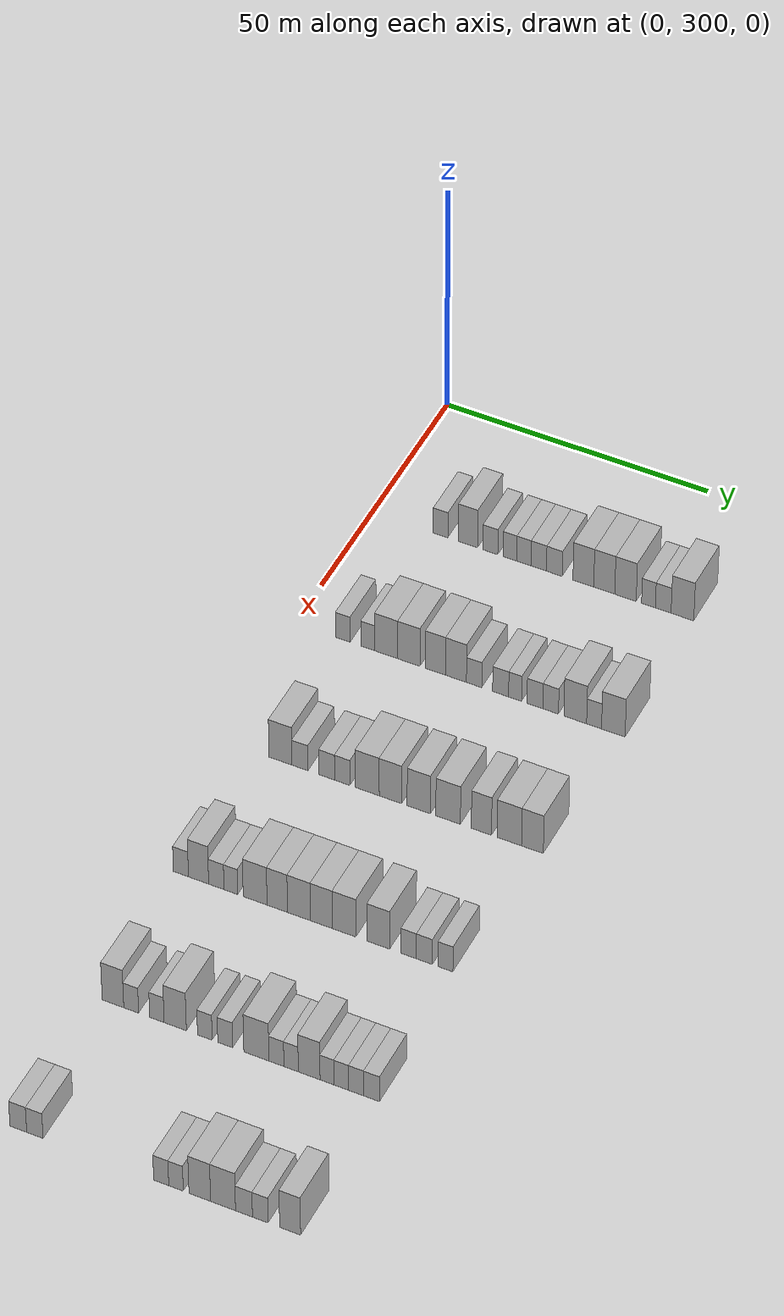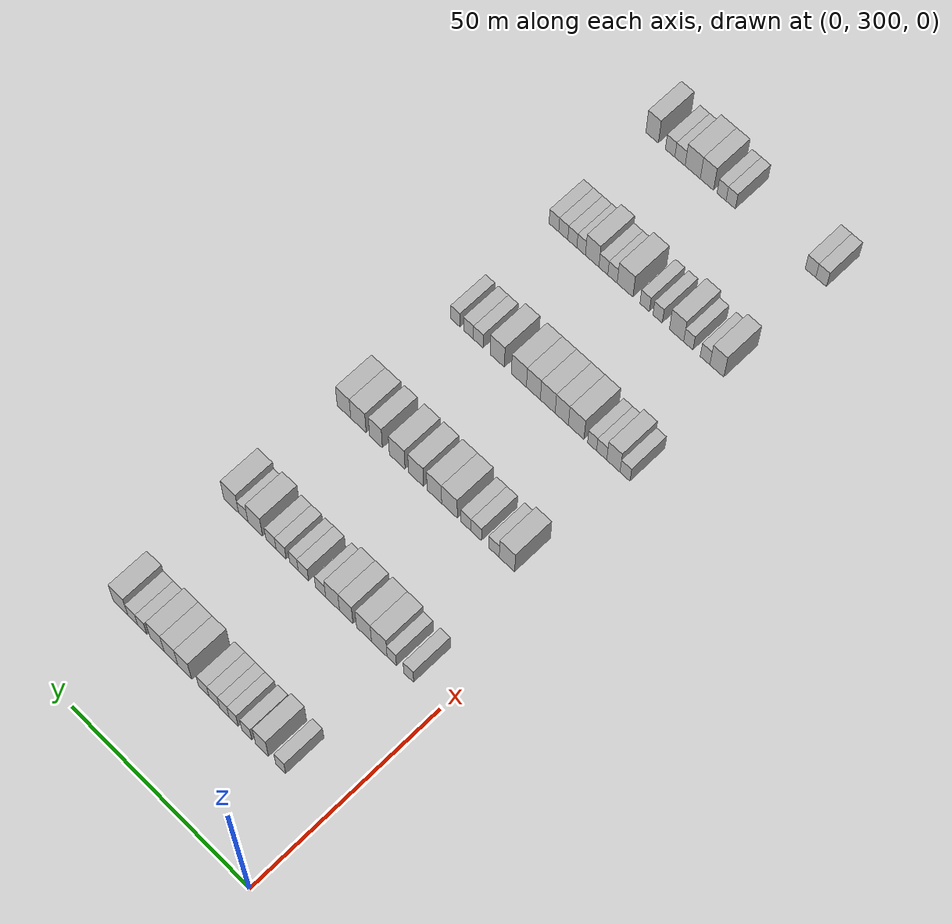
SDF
<sdf version="1.6">
 <world name="default">
  <model name="building_186">
   <static>1</static>
   <pose>25.0000 312.9798 0 0.000000 0.000000 0.000000</pose>
   <link name="link">
    <pose>0 0 3.00 0 0 0</pose>
    <collision name="collision"><geometry><box><size>10.0000 2.7878 6.0000</size></box></geometry></collision>
    <visual name="visual">
     <cast_shadows>0</cast_shadows>
     <geometry><box><size>10.0000 2.7878 6.0000</size></box></geometry>
     <material>
      <script>
       <uri>model://HANNAS_wall/materials/scripts</uri>
       <uri>model://HANNAS_wall/materials/textures</uri>
       <name>vrc/HANNAS_wall</name>
      </script>
     </material>
    </visual>
   </link>
  </model>
  <model name="building_187">
   <static>1</static>
   <pose>25.0000 318.2085 0 0.000000 0.000000 0.000000</pose>
   <link name="link">
    <pose>0 0 4.50 0 0 0</pose>
    <collision name="collision"><geometry><box><size>10.0000 3.6695 9.0000</size></box></geometry></collision>
    <visual name="visual">
     <cast_shadows>0</cast_shadows>
     <geometry><box><size>10.0000 3.6695 9.0000</size></box></geometry>
     <material>
      <script>
       <uri>model://HANNAS_wall/materials/scripts</uri>
       <uri>model://HANNAS_wall/materials/textures</uri>
       <name>vrc/HANNAS_wall</name>
      </script>
     </material>
    </visual>
   </link>
  </model>
  <model name="building_188">
   <static>1</static>
   <pose>25.0000 322.4552 0 0.000000 0.000000 0.000000</pose>
   <link name="link">
    <pose>0 0 3.00 0 0 0</pose>
    <collision name="collision"><geometry><box><size>10.0000 2.8240 6.0000</size></box></geometry></collision>
    <visual name="visual">
     <cast_shadows>0</cast_shadows>
     <geometry><box><size>10.0000 2.8240 6.0000</size></box></geometry>
     <material>
      <script>
       <uri>model://HANNAS_wall/materials/scripts</uri>
       <uri>model://HANNAS_wall/materials/textures</uri>
       <name>vrc/HANNAS_wall</name>
      </script>
     </material>
    </visual>
   </link>
  </model>
  <model name="building_189">
   <static>1</static>
   <pose>25.0000 326.1643 0 0.000000 0.000000 0.000000</pose>
   <link name="link">
    <pose>0 0 3.00 0 0 0</pose>
    <collision name="collision"><geometry><box><size>10.0000 2.5942 6.0000</size></box></geometry></collision>
    <visual name="visual">
     <cast_shadows>0</cast_shadows>
     <geometry><box><size>10.0000 2.5942 6.0000</size></box></geometry>
     <material>
      <script>
       <uri>model://HANNAS_wall/materials/scripts</uri>
       <uri>model://HANNAS_wall/materials/textures</uri>
       <name>vrc/HANNAS_wall</name>
      </script>
     </material>
    </visual>
   </link>
  </model>
  <model name="building_190">
   <static>1</static>
   <pose>25.0000 328.7961 0 0.000000 0.000000 0.000000</pose>
   <link name="link">
    <pose>0 0 3.00 0 0 0</pose>
    <collision name="collision"><geometry><box><size>10.0000 2.6695 6.0000</size></box></geometry></collision>
    <visual name="visual">
     <cast_shadows>0</cast_shadows>
     <geometry><box><size>10.0000 2.6695 6.0000</size></box></geometry>
     <material>
      <script>
       <uri>model://HANNAS_wall/materials/scripts</uri>
       <uri>model://HANNAS_wall/materials/textures</uri>
       <name>vrc/HANNAS_wall</name>
      </script>
     </material>
    </visual>
   </link>
  </model>
  <model name="building_191">
   <static>1</static>
   <pose>25.0000 331.6047 0 0.000000 0.000000 0.000000</pose>
   <link name="link">
    <pose>0 0 3.00 0 0 0</pose>
    <collision name="collision"><geometry><box><size>10.0000 2.9478 6.0000</size></box></geometry></collision>
    <visual name="visual">
     <cast_shadows>0</cast_shadows>
     <geometry><box><size>10.0000 2.9478 6.0000</size></box></geometry>
     <material>
      <script>
       <uri>model://HANNAS_wall/materials/scripts</uri>
       <uri>model://HANNAS_wall/materials/textures</uri>
       <name>vrc/HANNAS_wall</name>
      </script>
     </material>
    </visual>
   </link>
  </model>
  <model name="building_192">
   <static>1</static>
   <pose>25.0000 334.5769 0 0.000000 0.000000 0.000000</pose>
   <link name="link">
    <pose>0 0 3.00 0 0 0</pose>
    <collision name="collision"><geometry><box><size>10.0000 2.9965 6.0000</size></box></geometry></collision>
    <visual name="visual">
     <cast_shadows>0</cast_shadows>
     <geometry><box><size>10.0000 2.9965 6.0000</size></box></geometry>
     <material>
      <script>
       <uri>model://HANNAS_wall/materials/scripts</uri>
       <uri>model://HANNAS_wall/materials/textures</uri>
       <name>vrc/HANNAS_wall</name>
      </script>
     </material>
    </visual>
   </link>
  </model>
  <model name="building_193">
   <static>1</static>
   <pose>25.0000 340.0293 0 0.000000 0.000000 0.000000</pose>
   <link name="link">
    <pose>0 0 4.50 0 0 0</pose>
    <collision name="collision"><geometry><box><size>10.0000 3.9084 9.0000</size></box></geometry></collision>
    <visual name="visual">
     <cast_shadows>0</cast_shadows>
     <geometry><box><size>10.0000 3.9084 9.0000</size></box></geometry>
     <material>
      <script>
       <uri>model://HANNAS_wall/materials/scripts</uri>
       <uri>model://HANNAS_wall/materials/textures</uri>
       <name>vrc/HANNAS_wall</name>
      </script>
     </material>
    </visual>
   </link>
  </model>
  <model name="building_194">
   <static>1</static>
   <pose>25.0000 343.9589 0 0.000000 0.000000 0.000000</pose>
   <link name="link">
    <pose>0 0 4.50 0 0 0</pose>
    <collision name="collision"><geometry><box><size>10.0000 3.9507 9.0000</size></box></geometry></collision>
    <visual name="visual">
     <cast_shadows>0</cast_shadows>
     <geometry><box><size>10.0000 3.9507 9.0000</size></box></geometry>
     <material>
      <script>
       <uri>model://HANNAS_wall/materials/scripts</uri>
       <uri>model://HANNAS_wall/materials/textures</uri>
       <name>vrc/HANNAS_wall</name>
      </script>
     </material>
    </visual>
   </link>
  </model>
  <model name="building_195">
   <static>1</static>
   <pose>25.0000 347.9471 0 0.000000 0.000000 0.000000</pose>
   <link name="link">
    <pose>0 0 4.50 0 0 0</pose>
    <collision name="collision"><geometry><box><size>10.0000 4.0257 9.0000</size></box></geometry></collision>
    <visual name="visual">
     <cast_shadows>0</cast_shadows>
     <geometry><box><size>10.0000 4.0257 9.0000</size></box></geometry>
     <material>
      <script>
       <uri>model://HANNAS_wall/materials/scripts</uri>
       <uri>model://HANNAS_wall/materials/textures</uri>
       <name>vrc/HANNAS_wall</name>
      </script>
     </material>
    </visual>
   </link>
  </model>
  <model name="building_196">
   <static>1</static>
   <pose>25.0000 352.2497 0 0.000000 0.000000 0.000000</pose>
   <link name="link">
    <pose>0 0 3.00 0 0 0</pose>
    <collision name="collision"><geometry><box><size>10.0000 2.5794 6.0000</size></box></geometry></collision>
    <visual name="visual">
     <cast_shadows>0</cast_shadows>
     <geometry><box><size>10.0000 2.5794 6.0000</size></box></geometry>
     <material>
      <script>
       <uri>model://HANNAS_wall/materials/scripts</uri>
       <uri>model://HANNAS_wall/materials/textures</uri>
       <name>vrc/HANNAS_wall</name>
      </script>
     </material>
    </visual>
   </link>
  </model>
  <model name="building_197">
   <static>1</static>
   <pose>25.0000 355.0059 0 0.000000 0.000000 0.000000</pose>
   <link name="link">
    <pose>0 0 3.00 0 0 0</pose>
    <collision name="collision"><geometry><box><size>10.0000 2.9331 6.0000</size></box></geometry></collision>
    <visual name="visual">
     <cast_shadows>0</cast_shadows>
     <geometry><box><size>10.0000 2.9331 6.0000</size></box></geometry>
     <material>
      <script>
       <uri>model://HANNAS_wall/materials/scripts</uri>
       <uri>model://HANNAS_wall/materials/textures</uri>
       <name>vrc/HANNAS_wall</name>
      </script>
     </material>
    </visual>
   </link>
  </model>
  <model name="building_198">
   <static>1</static>
   <pose>25.0000 358.5890 0 0.000000 0.000000 0.000000</pose>
   <link name="link">
    <pose>0 0 4.50 0 0 0</pose>
    <collision name="collision"><geometry><box><size>10.0000 4.2330 9.0000</size></box></geometry></collision>
    <visual name="visual">
     <cast_shadows>0</cast_shadows>
     <geometry><box><size>10.0000 4.2330 9.0000</size></box></geometry>
     <material>
      <script>
       <uri>model://HANNAS_wall/materials/scripts</uri>
       <uri>model://HANNAS_wall/materials/textures</uri>
       <name>vrc/HANNAS_wall</name>
      </script>
     </material>
    </visual>
   </link>
  </model>
  <model name="building_400">
   <static>1</static>
   <pose>55.0000 308.9355 0 0.000000 0.000000 0.000000</pose>
   <link name="link">
    <pose>0 0 3.00 0 0 0</pose>
    <collision name="collision"><geometry><box><size>10.0000 2.7622 6.0000</size></box></geometry></collision>
    <visual name="visual">
     <cast_shadows>0</cast_shadows>
     <geometry><box><size>10.0000 2.7622 6.0000</size></box></geometry>
     <material>
      <script>
       <uri>model://HANNAS_wall/materials/scripts</uri>
       <uri>model://HANNAS_wall/materials/textures</uri>
       <name>vrc/HANNAS_wall</name>
      </script>
     </material>
    </visual>
   </link>
  </model>
  <model name="building_401">
   <static>1</static>
   <pose>55.0000 313.6156 0 0.000000 0.000000 0.000000</pose>
   <link name="link">
    <pose>0 0 3.00 0 0 0</pose>
    <collision name="collision"><geometry><box><size>10.0000 2.5980 6.0000</size></box></geometry></collision>
    <visual name="visual">
     <cast_shadows>0</cast_shadows>
     <geometry><box><size>10.0000 2.5980 6.0000</size></box></geometry>
     <material>
      <script>
       <uri>model://HANNAS_wall/materials/scripts</uri>
       <uri>model://HANNAS_wall/materials/textures</uri>
       <name>vrc/HANNAS_wall</name>
      </script>
     </material>
    </visual>
   </link>
  </model>
  <model name="building_402">
   <static>1</static>
   <pose>55.0000 317.0889 0 0.000000 0.000000 0.000000</pose>
   <link name="link">
    <pose>0 0 4.50 0 0 0</pose>
    <collision name="collision"><geometry><box><size>10.0000 4.3486 9.0000</size></box></geometry></collision>
    <visual name="visual">
     <cast_shadows>0</cast_shadows>
     <geometry><box><size>10.0000 4.3486 9.0000</size></box></geometry>
     <material>
      <script>
       <uri>model://HANNAS_wall/materials/scripts</uri>
       <uri>model://HANNAS_wall/materials/textures</uri>
       <name>vrc/HANNAS_wall</name>
      </script>
     </material>
    </visual>
   </link>
  </model>
  <model name="building_403">
   <static>1</static>
   <pose>55.0000 321.3514 0 0.000000 0.000000 0.000000</pose>
   <link name="link">
    <pose>0 0 4.50 0 0 0</pose>
    <collision name="collision"><geometry><box><size>10.0000 4.1764 9.0000</size></box></geometry></collision>
    <visual name="visual">
     <cast_shadows>0</cast_shadows>
     <geometry><box><size>10.0000 4.1764 9.0000</size></box></geometry>
     <material>
      <script>
       <uri>model://HANNAS_wall/materials/scripts</uri>
       <uri>model://HANNAS_wall/materials/textures</uri>
       <name>vrc/HANNAS_wall</name>
      </script>
     </material>
    </visual>
   </link>
  </model>
  <model name="building_404">
   <static>1</static>
   <pose>55.0000 326.3251 0 0.000000 0.000000 0.000000</pose>
   <link name="link">
    <pose>0 0 4.50 0 0 0</pose>
    <collision name="collision"><geometry><box><size>10.0000 3.7711 9.0000</size></box></geometry></collision>
    <visual name="visual">
     <cast_shadows>0</cast_shadows>
     <geometry><box><size>10.0000 3.7711 9.0000</size></box></geometry>
     <material>
      <script>
       <uri>model://HANNAS_wall/materials/scripts</uri>
       <uri>model://HANNAS_wall/materials/textures</uri>
       <name>vrc/HANNAS_wall</name>
      </script>
     </material>
    </visual>
   </link>
  </model>
  <model name="building_405">
   <static>1</static>
   <pose>55.0000 330.1691 0 0.000000 0.000000 0.000000</pose>
   <link name="link">
    <pose>0 0 4.50 0 0 0</pose>
    <collision name="collision"><geometry><box><size>10.0000 3.9169 9.0000</size></box></geometry></collision>
    <visual name="visual">
     <cast_shadows>0</cast_shadows>
     <geometry><box><size>10.0000 3.9169 9.0000</size></box></geometry>
     <material>
      <script>
       <uri>model://HANNAS_wall/materials/scripts</uri>
       <uri>model://HANNAS_wall/materials/textures</uri>
       <name>vrc/HANNAS_wall</name>
      </script>
     </material>
    </visual>
   </link>
  </model>
  <model name="building_406">
   <static>1</static>
   <pose>55.0000 333.5690 0 0.000000 0.000000 0.000000</pose>
   <link name="link">
    <pose>0 0 3.00 0 0 0</pose>
    <collision name="collision"><geometry><box><size>10.0000 2.8828 6.0000</size></box></geometry></collision>
    <visual name="visual">
     <cast_shadows>0</cast_shadows>
     <geometry><box><size>10.0000 2.8828 6.0000</size></box></geometry>
     <material>
      <script>
       <uri>model://HANNAS_wall/materials/scripts</uri>
       <uri>model://HANNAS_wall/materials/textures</uri>
       <name>vrc/HANNAS_wall</name>
      </script>
     </material>
    </visual>
   </link>
  </model>
  <model name="building_407">
   <static>1</static>
   <pose>55.0000 338.4950 0 0.000000 0.000000 0.000000</pose>
   <link name="link">
    <pose>0 0 3.00 0 0 0</pose>
    <collision name="collision"><geometry><box><size>10.0000 2.9691 6.0000</size></box></geometry></collision>
    <visual name="visual">
     <cast_shadows>0</cast_shadows>
     <geometry><box><size>10.0000 2.9691 6.0000</size></box></geometry>
     <material>
      <script>
       <uri>model://HANNAS_wall/materials/scripts</uri>
       <uri>model://HANNAS_wall/materials/textures</uri>
       <name>vrc/HANNAS_wall</name>
      </script>
     </material>
    </visual>
   </link>
  </model>
  <model name="building_408">
   <static>1</static>
   <pose>55.0000 341.1903 0 0.000000 0.000000 0.000000</pose>
   <link name="link">
    <pose>0 0 3.00 0 0 0</pose>
    <collision name="collision"><geometry><box><size>10.0000 2.4217 6.0000</size></box></geometry></collision>
    <visual name="visual">
     <cast_shadows>0</cast_shadows>
     <geometry><box><size>10.0000 2.4217 6.0000</size></box></geometry>
     <material>
      <script>
       <uri>model://HANNAS_wall/materials/scripts</uri>
       <uri>model://HANNAS_wall/materials/textures</uri>
       <name>vrc/HANNAS_wall</name>
      </script>
     </material>
    </visual>
   </link>
  </model>
  <model name="building_409">
   <static>1</static>
   <pose>55.0000 344.8584 0 0.000000 0.000000 0.000000</pose>
   <link name="link">
    <pose>0 0 3.00 0 0 0</pose>
    <collision name="collision"><geometry><box><size>10.0000 2.9144 6.0000</size></box></geometry></collision>
    <visual name="visual">
     <cast_shadows>0</cast_shadows>
     <geometry><box><size>10.0000 2.9144 6.0000</size></box></geometry>
     <material>
      <script>
       <uri>model://HANNAS_wall/materials/scripts</uri>
       <uri>model://HANNAS_wall/materials/textures</uri>
       <name>vrc/HANNAS_wall</name>
      </script>
     </material>
    </visual>
   </link>
  </model>
  <model name="building_410">
   <static>1</static>
   <pose>55.0000 347.7702 0 0.000000 0.000000 0.000000</pose>
   <link name="link">
    <pose>0 0 3.00 0 0 0</pose>
    <collision name="collision"><geometry><box><size>10.0000 2.9091 6.0000</size></box></geometry></collision>
    <visual name="visual">
     <cast_shadows>0</cast_shadows>
     <geometry><box><size>10.0000 2.9091 6.0000</size></box></geometry>
     <material>
      <script>
       <uri>model://HANNAS_wall/materials/scripts</uri>
       <uri>model://HANNAS_wall/materials/textures</uri>
       <name>vrc/HANNAS_wall</name>
      </script>
     </material>
    </visual>
   </link>
  </model>
  <model name="building_411">
   <static>1</static>
   <pose>55.0000 352.3205 0 0.000000 0.000000 0.000000</pose>
   <link name="link">
    <pose>0 0 4.50 0 0 0</pose>
    <collision name="collision"><geometry><box><size>10.0000 4.1915 9.0000</size></box></geometry></collision>
    <visual name="visual">
     <cast_shadows>0</cast_shadows>
     <geometry><box><size>10.0000 4.1915 9.0000</size></box></geometry>
     <material>
      <script>
       <uri>model://HANNAS_wall/materials/scripts</uri>
       <uri>model://HANNAS_wall/materials/textures</uri>
       <name>vrc/HANNAS_wall</name>
      </script>
     </material>
    </visual>
   </link>
  </model>
  <model name="building_412">
   <static>1</static>
   <pose>55.0000 355.7908 0 0.000000 0.000000 0.000000</pose>
   <link name="link">
    <pose>0 0 3.00 0 0 0</pose>
    <collision name="collision"><geometry><box><size>10.0000 2.7490 6.0000</size></box></geometry></collision>
    <visual name="visual">
     <cast_shadows>0</cast_shadows>
     <geometry><box><size>10.0000 2.7490 6.0000</size></box></geometry>
     <material>
      <script>
       <uri>model://HANNAS_wall/materials/scripts</uri>
       <uri>model://HANNAS_wall/materials/textures</uri>
       <name>vrc/HANNAS_wall</name>
      </script>
     </material>
    </visual>
   </link>
  </model>
  <model name="building_413">
   <static>1</static>
   <pose>55.0000 359.3348 0 0.000000 0.000000 0.000000</pose>
   <link name="link">
    <pose>0 0 4.50 0 0 0</pose>
    <collision name="collision"><geometry><box><size>10.0000 4.3392 9.0000</size></box></geometry></collision>
    <visual name="visual">
     <cast_shadows>0</cast_shadows>
     <geometry><box><size>10.0000 4.3392 9.0000</size></box></geometry>
     <material>
      <script>
       <uri>model://HANNAS_wall/materials/scripts</uri>
       <uri>model://HANNAS_wall/materials/textures</uri>
       <name>vrc/HANNAS_wall</name>
      </script>
     </material>
    </visual>
   </link>
  </model>
  <model name="building_634">
   <static>1</static>
   <pose>85.0000 312.0626 0 0.000000 0.000000 0.000000</pose>
   <link name="link">
    <pose>0 0 4.50 0 0 0</pose>
    <collision name="collision"><geometry><box><size>10.0000 4.2834 9.0000</size></box></geometry></collision>
    <visual name="visual">
     <cast_shadows>0</cast_shadows>
     <geometry><box><size>10.0000 4.2834 9.0000</size></box></geometry>
     <material>
      <script>
       <uri>model://HANNAS_wall/materials/scripts</uri>
       <uri>model://HANNAS_wall/materials/textures</uri>
       <name>vrc/HANNAS_wall</name>
      </script>
     </material>
    </visual>
   </link>
  </model>
  <model name="building_635">
   <static>1</static>
   <pose>85.0000 315.6924 0 0.000000 0.000000 0.000000</pose>
   <link name="link">
    <pose>0 0 3.00 0 0 0</pose>
    <collision name="collision"><geometry><box><size>10.0000 2.9762 6.0000</size></box></geometry></collision>
    <visual name="visual">
     <cast_shadows>0</cast_shadows>
     <geometry><box><size>10.0000 2.9762 6.0000</size></box></geometry>
     <material>
      <script>
       <uri>model://HANNAS_wall/materials/scripts</uri>
       <uri>model://HANNAS_wall/materials/textures</uri>
       <name>vrc/HANNAS_wall</name>
      </script>
     </material>
    </visual>
   </link>
  </model>
  <model name="building_636">
   <static>1</static>
   <pose>85.0000 320.6457 0 0.000000 0.000000 0.000000</pose>
   <link name="link">
    <pose>0 0 3.00 0 0 0</pose>
    <collision name="collision"><geometry><box><size>10.0000 2.9304 6.0000</size></box></geometry></collision>
    <visual name="visual">
     <cast_shadows>0</cast_shadows>
     <geometry><box><size>10.0000 2.9304 6.0000</size></box></geometry>
     <material>
      <script>
       <uri>model://HANNAS_wall/materials/scripts</uri>
       <uri>model://HANNAS_wall/materials/textures</uri>
       <name>vrc/HANNAS_wall</name>
      </script>
     </material>
    </visual>
   </link>
  </model>
  <model name="building_637">
   <static>1</static>
   <pose>85.0000 323.5321 0 0.000000 0.000000 0.000000</pose>
   <link name="link">
    <pose>0 0 3.00 0 0 0</pose>
    <collision name="collision"><geometry><box><size>10.0000 2.8424 6.0000</size></box></geometry></collision>
    <visual name="visual">
     <cast_shadows>0</cast_shadows>
     <geometry><box><size>10.0000 2.8424 6.0000</size></box></geometry>
     <material>
      <script>
       <uri>model://HANNAS_wall/materials/scripts</uri>
       <uri>model://HANNAS_wall/materials/textures</uri>
       <name>vrc/HANNAS_wall</name>
      </script>
     </material>
    </visual>
   </link>
  </model>
  <model name="building_638">
   <static>1</static>
   <pose>85.0000 328.1573 0 0.000000 0.000000 0.000000</pose>
   <link name="link">
    <pose>0 0 4.50 0 0 0</pose>
    <collision name="collision"><geometry><box><size>10.0000 4.4080 9.0000</size></box></geometry></collision>
    <visual name="visual">
     <cast_shadows>0</cast_shadows>
     <geometry><box><size>10.0000 4.4080 9.0000</size></box></geometry>
     <material>
      <script>
       <uri>model://HANNAS_wall/materials/scripts</uri>
       <uri>model://HANNAS_wall/materials/textures</uri>
       <name>vrc/HANNAS_wall</name>
      </script>
     </material>
    </visual>
   </link>
  </model>
  <model name="building_639">
   <static>1</static>
   <pose>85.0000 332.4304 0 0.000000 0.000000 0.000000</pose>
   <link name="link">
    <pose>0 0 4.50 0 0 0</pose>
    <collision name="collision"><geometry><box><size>10.0000 4.1383 9.0000</size></box></geometry></collision>
    <visual name="visual">
     <cast_shadows>0</cast_shadows>
     <geometry><box><size>10.0000 4.1383 9.0000</size></box></geometry>
     <material>
      <script>
       <uri>model://HANNAS_wall/materials/scripts</uri>
       <uri>model://HANNAS_wall/materials/textures</uri>
       <name>vrc/HANNAS_wall</name>
      </script>
     </material>
    </visual>
   </link>
  </model>
  <model name="building_640">
   <static>1</static>
   <pose>85.0000 337.6315 0 0.000000 0.000000 0.000000</pose>
   <link name="link">
    <pose>0 0 4.50 0 0 0</pose>
    <collision name="collision"><geometry><box><size>10.0000 4.2638 9.0000</size></box></geometry></collision>
    <visual name="visual">
     <cast_shadows>0</cast_shadows>
     <geometry><box><size>10.0000 4.2638 9.0000</size></box></geometry>
     <material>
      <script>
       <uri>model://HANNAS_wall/materials/scripts</uri>
       <uri>model://HANNAS_wall/materials/textures</uri>
       <name>vrc/HANNAS_wall</name>
      </script>
     </material>
    </visual>
   </link>
  </model>
  <model name="building_641">
   <static>1</static>
   <pose>85.0000 343.0099 0 0.000000 0.000000 0.000000</pose>
   <link name="link">
    <pose>0 0 4.50 0 0 0</pose>
    <collision name="collision"><geometry><box><size>10.0000 4.4932 9.0000</size></box></geometry></collision>
    <visual name="visual">
     <cast_shadows>0</cast_shadows>
     <geometry><box><size>10.0000 4.4932 9.0000</size></box></geometry>
     <material>
      <script>
       <uri>model://HANNAS_wall/materials/scripts</uri>
       <uri>model://HANNAS_wall/materials/textures</uri>
       <name>vrc/HANNAS_wall</name>
      </script>
     </material>
    </visual>
   </link>
  </model>
  <model name="building_642">
   <static>1</static>
   <pose>85.0000 349.0966 0 0.000000 0.000000 0.000000</pose>
   <link name="link">
    <pose>0 0 4.50 0 0 0</pose>
    <collision name="collision"><geometry><box><size>10.0000 3.6800 9.0000</size></box></geometry></collision>
    <visual name="visual">
     <cast_shadows>0</cast_shadows>
     <geometry><box><size>10.0000 3.6800 9.0000</size></box></geometry>
     <material>
      <script>
       <uri>model://HANNAS_wall/materials/scripts</uri>
       <uri>model://HANNAS_wall/materials/textures</uri>
       <name>vrc/HANNAS_wall</name>
      </script>
     </material>
    </visual>
   </link>
  </model>
  <model name="building_643">
   <static>1</static>
   <pose>85.0000 354.1654 0 0.000000 0.000000 0.000000</pose>
   <link name="link">
    <pose>0 0 4.50 0 0 0</pose>
    <collision name="collision"><geometry><box><size>10.0000 4.4576 9.0000</size></box></geometry></collision>
    <visual name="visual">
     <cast_shadows>0</cast_shadows>
     <geometry><box><size>10.0000 4.4576 9.0000</size></box></geometry>
     <material>
      <script>
       <uri>model://HANNAS_wall/materials/scripts</uri>
       <uri>model://HANNAS_wall/materials/textures</uri>
       <name>vrc/HANNAS_wall</name>
      </script>
     </material>
    </visual>
   </link>
  </model>
  <model name="building_644">
   <static>1</static>
   <pose>85.0000 358.3756 0 0.000000 0.000000 0.000000</pose>
   <link name="link">
    <pose>0 0 4.50 0 0 0</pose>
    <collision name="collision"><geometry><box><size>10.0000 3.9628 9.0000</size></box></geometry></collision>
    <visual name="visual">
     <cast_shadows>0</cast_shadows>
     <geometry><box><size>10.0000 3.9628 9.0000</size></box></geometry>
     <material>
      <script>
       <uri>model://HANNAS_wall/materials/scripts</uri>
       <uri>model://HANNAS_wall/materials/textures</uri>
       <name>vrc/HANNAS_wall</name>
      </script>
     </material>
    </visual>
   </link>
  </model>
  <model name="building_860">
   <static>1</static>
   <pose>115.0000 308.7640 0 0.000000 0.000000 0.000000</pose>
   <link name="link">
    <pose>0 0 3.00 0 0 0</pose>
    <collision name="collision"><geometry><box><size>10.0000 2.7661 6.0000</size></box></geometry></collision>
    <visual name="visual">
     <cast_shadows>0</cast_shadows>
     <geometry><box><size>10.0000 2.7661 6.0000</size></box></geometry>
     <material>
      <script>
       <uri>model://HANNAS_wall/materials/scripts</uri>
       <uri>model://HANNAS_wall/materials/textures</uri>
       <name>vrc/HANNAS_wall</name>
      </script>
     </material>
    </visual>
   </link>
  </model>
  <model name="building_861">
   <static>1</static>
   <pose>115.0000 311.9986 0 0.000000 0.000000 0.000000</pose>
   <link name="link">
    <pose>0 0 4.50 0 0 0</pose>
    <collision name="collision"><geometry><box><size>10.0000 3.7030 9.0000</size></box></geometry></collision>
    <visual name="visual">
     <cast_shadows>0</cast_shadows>
     <geometry><box><size>10.0000 3.7030 9.0000</size></box></geometry>
     <material>
      <script>
       <uri>model://HANNAS_wall/materials/scripts</uri>
       <uri>model://HANNAS_wall/materials/textures</uri>
       <name>vrc/HANNAS_wall</name>
      </script>
     </material>
    </visual>
   </link>
  </model>
  <model name="building_862">
   <static>1</static>
   <pose>115.0000 315.2630 0 0.000000 0.000000 0.000000</pose>
   <link name="link">
    <pose>0 0 3.00 0 0 0</pose>
    <collision name="collision"><geometry><box><size>10.0000 2.8258 6.0000</size></box></geometry></collision>
    <visual name="visual">
     <cast_shadows>0</cast_shadows>
     <geometry><box><size>10.0000 2.8258 6.0000</size></box></geometry>
     <material>
      <script>
       <uri>model://HANNAS_wall/materials/scripts</uri>
       <uri>model://HANNAS_wall/materials/textures</uri>
       <name>vrc/HANNAS_wall</name>
      </script>
     </material>
    </visual>
   </link>
  </model>
  <model name="building_863">
   <static>1</static>
   <pose>115.0000 317.9337 0 0.000000 0.000000 0.000000</pose>
   <link name="link">
    <pose>0 0 3.00 0 0 0</pose>
    <collision name="collision"><geometry><box><size>10.0000 2.5156 6.0000</size></box></geometry></collision>
    <visual name="visual">
     <cast_shadows>0</cast_shadows>
     <geometry><box><size>10.0000 2.5156 6.0000</size></box></geometry>
     <material>
      <script>
       <uri>model://HANNAS_wall/materials/scripts</uri>
       <uri>model://HANNAS_wall/materials/textures</uri>
       <name>vrc/HANNAS_wall</name>
      </script>
     </material>
    </visual>
   </link>
  </model>
  <model name="building_864">
   <static>1</static>
   <pose>115.0000 322.3721 0 0.000000 0.000000 0.000000</pose>
   <link name="link">
    <pose>0 0 4.50 0 0 0</pose>
    <collision name="collision"><geometry><box><size>10.0000 4.3612 9.0000</size></box></geometry></collision>
    <visual name="visual">
     <cast_shadows>0</cast_shadows>
     <geometry><box><size>10.0000 4.3612 9.0000</size></box></geometry>
     <material>
      <script>
       <uri>model://HANNAS_wall/materials/scripts</uri>
       <uri>model://HANNAS_wall/materials/textures</uri>
       <name>vrc/HANNAS_wall</name>
      </script>
     </material>
    </visual>
   </link>
  </model>
  <model name="building_865">
   <static>1</static>
   <pose>115.0000 326.4182 0 0.000000 0.000000 0.000000</pose>
   <link name="link">
    <pose>0 0 4.50 0 0 0</pose>
    <collision name="collision"><geometry><box><size>10.0000 3.7310 9.0000</size></box></geometry></collision>
    <visual name="visual">
     <cast_shadows>0</cast_shadows>
     <geometry><box><size>10.0000 3.7310 9.0000</size></box></geometry>
     <material>
      <script>
       <uri>model://HANNAS_wall/materials/scripts</uri>
       <uri>model://HANNAS_wall/materials/textures</uri>
       <name>vrc/HANNAS_wall</name>
      </script>
     </material>
    </visual>
   </link>
  </model>
  <model name="building_866">
   <static>1</static>
   <pose>115.0000 330.3734 0 0.000000 0.000000 0.000000</pose>
   <link name="link">
    <pose>0 0 4.50 0 0 0</pose>
    <collision name="collision"><geometry><box><size>10.0000 4.1794 9.0000</size></box></geometry></collision>
    <visual name="visual">
     <cast_shadows>0</cast_shadows>
     <geometry><box><size>10.0000 4.1794 9.0000</size></box></geometry>
     <material>
      <script>
       <uri>model://HANNAS_wall/materials/scripts</uri>
       <uri>model://HANNAS_wall/materials/textures</uri>
       <name>vrc/HANNAS_wall</name>
      </script>
     </material>
    </visual>
   </link>
  </model>
  <model name="building_867">
   <static>1</static>
   <pose>115.0000 334.4434 0 0.000000 0.000000 0.000000</pose>
   <link name="link">
    <pose>0 0 4.50 0 0 0</pose>
    <collision name="collision"><geometry><box><size>10.0000 3.9606 9.0000</size></box></geometry></collision>
    <visual name="visual">
     <cast_shadows>0</cast_shadows>
     <geometry><box><size>10.0000 3.9606 9.0000</size></box></geometry>
     <material>
      <script>
       <uri>model://HANNAS_wall/materials/scripts</uri>
       <uri>model://HANNAS_wall/materials/textures</uri>
       <name>vrc/HANNAS_wall</name>
      </script>
     </material>
    </visual>
   </link>
  </model>
  <model name="building_868">
   <static>1</static>
   <pose>115.0000 338.5627 0 0.000000 0.000000 0.000000</pose>
   <link name="link">
    <pose>0 0 4.50 0 0 0</pose>
    <collision name="collision"><geometry><box><size>10.0000 4.2780 9.0000</size></box></geometry></collision>
    <visual name="visual">
     <cast_shadows>0</cast_shadows>
     <geometry><box><size>10.0000 4.2780 9.0000</size></box></geometry>
     <material>
      <script>
       <uri>model://HANNAS_wall/materials/scripts</uri>
       <uri>model://HANNAS_wall/materials/textures</uri>
       <name>vrc/HANNAS_wall</name>
      </script>
     </material>
    </visual>
   </link>
  </model>
  <model name="building_869">
   <static>1</static>
   <pose>115.0000 344.7583 0 0.000000 0.000000 0.000000</pose>
   <link name="link">
    <pose>0 0 4.50 0 0 0</pose>
    <collision name="collision"><geometry><box><size>10.0000 4.1134 9.0000</size></box></geometry></collision>
    <visual name="visual">
     <cast_shadows>0</cast_shadows>
     <geometry><box><size>10.0000 4.1134 9.0000</size></box></geometry>
     <material>
      <script>
       <uri>model://HANNAS_wall/materials/scripts</uri>
       <uri>model://HANNAS_wall/materials/textures</uri>
       <name>vrc/HANNAS_wall</name>
      </script>
     </material>
    </visual>
   </link>
  </model>
  <model name="building_870">
   <static>1</static>
   <pose>115.0000 350.2076 0 0.000000 0.000000 0.000000</pose>
   <link name="link">
    <pose>0 0 3.00 0 0 0</pose>
    <collision name="collision"><geometry><box><size>10.0000 2.7851 6.0000</size></box></geometry></collision>
    <visual name="visual">
     <cast_shadows>0</cast_shadows>
     <geometry><box><size>10.0000 2.7851 6.0000</size></box></geometry>
     <material>
      <script>
       <uri>model://HANNAS_wall/materials/scripts</uri>
       <uri>model://HANNAS_wall/materials/textures</uri>
       <name>vrc/HANNAS_wall</name>
      </script>
     </material>
    </visual>
   </link>
  </model>
  <model name="building_871">
   <static>1</static>
   <pose>115.0000 353.0470 0 0.000000 0.000000 0.000000</pose>
   <link name="link">
    <pose>0 0 3.00 0 0 0</pose>
    <collision name="collision"><geometry><box><size>10.0000 2.8937 6.0000</size></box></geometry></collision>
    <visual name="visual">
     <cast_shadows>0</cast_shadows>
     <geometry><box><size>10.0000 2.8937 6.0000</size></box></geometry>
     <material>
      <script>
       <uri>model://HANNAS_wall/materials/scripts</uri>
       <uri>model://HANNAS_wall/materials/textures</uri>
       <name>vrc/HANNAS_wall</name>
      </script>
     </material>
    </visual>
   </link>
  </model>
  <model name="building_872">
   <static>1</static>
   <pose>115.0000 356.8285 0 0.000000 0.000000 0.000000</pose>
   <link name="link">
    <pose>0 0 3.00 0 0 0</pose>
    <collision name="collision"><geometry><box><size>10.0000 2.6694 6.0000</size></box></geometry></collision>
    <visual name="visual">
     <cast_shadows>0</cast_shadows>
     <geometry><box><size>10.0000 2.6694 6.0000</size></box></geometry>
     <material>
      <script>
       <uri>model://HANNAS_wall/materials/scripts</uri>
       <uri>model://HANNAS_wall/materials/textures</uri>
       <name>vrc/HANNAS_wall</name>
      </script>
     </material>
    </visual>
   </link>
  </model>
  <model name="building_1086">
   <static>1</static>
   <pose>145.0000 311.8171 0 0.000000 0.000000 0.000000</pose>
   <link name="link">
    <pose>0 0 4.50 0 0 0</pose>
    <collision name="collision"><geometry><box><size>10.0000 3.9044 9.0000</size></box></geometry></collision>
    <visual name="visual">
     <cast_shadows>0</cast_shadows>
     <geometry><box><size>10.0000 3.9044 9.0000</size></box></geometry>
     <material>
      <script>
       <uri>model://HANNAS_wall/materials/scripts</uri>
       <uri>model://HANNAS_wall/materials/textures</uri>
       <name>vrc/HANNAS_wall</name>
      </script>
     </material>
    </visual>
   </link>
  </model>
  <model name="building_1087">
   <static>1</static>
   <pose>145.0000 315.1164 0 0.000000 0.000000 0.000000</pose>
   <link name="link">
    <pose>0 0 3.00 0 0 0</pose>
    <collision name="collision"><geometry><box><size>10.0000 2.6941 6.0000</size></box></geometry></collision>
    <visual name="visual">
     <cast_shadows>0</cast_shadows>
     <geometry><box><size>10.0000 2.6941 6.0000</size></box></geometry>
     <material>
      <script>
       <uri>model://HANNAS_wall/materials/scripts</uri>
       <uri>model://HANNAS_wall/materials/textures</uri>
       <name>vrc/HANNAS_wall</name>
      </script>
     </material>
    </visual>
   </link>
  </model>
  <model name="building_1088">
   <static>1</static>
   <pose>145.0000 319.7695 0 0.000000 0.000000 0.000000</pose>
   <link name="link">
    <pose>0 0 3.00 0 0 0</pose>
    <collision name="collision"><geometry><box><size>10.0000 2.6122 6.0000</size></box></geometry></collision>
    <visual name="visual">
     <cast_shadows>0</cast_shadows>
     <geometry><box><size>10.0000 2.6122 6.0000</size></box></geometry>
     <material>
      <script>
       <uri>model://HANNAS_wall/materials/scripts</uri>
       <uri>model://HANNAS_wall/materials/textures</uri>
       <name>vrc/HANNAS_wall</name>
      </script>
     </material>
    </visual>
   </link>
  </model>
  <model name="building_1089">
   <static>1</static>
   <pose>145.0000 323.0820 0 0.000000 0.000000 0.000000</pose>
   <link name="link">
    <pose>0 0 4.50 0 0 0</pose>
    <collision name="collision"><geometry><box><size>10.0000 4.0127 9.0000</size></box></geometry></collision>
    <visual name="visual">
     <cast_shadows>0</cast_shadows>
     <geometry><box><size>10.0000 4.0127 9.0000</size></box></geometry>
     <material>
      <script>
       <uri>model://HANNAS_wall/materials/scripts</uri>
       <uri>model://HANNAS_wall/materials/textures</uri>
       <name>vrc/HANNAS_wall</name>
      </script>
     </material>
    </visual>
   </link>
  </model>
  <model name="building_1090">
   <static>1</static>
   <pose>145.0000 328.4052 0 0.000000 0.000000 0.000000</pose>
   <link name="link">
    <pose>0 0 3.00 0 0 0</pose>
    <collision name="collision"><geometry><box><size>10.0000 2.6337 6.0000</size></box></geometry></collision>
    <visual name="visual">
     <cast_shadows>0</cast_shadows>
     <geometry><box><size>10.0000 2.6337 6.0000</size></box></geometry>
     <material>
      <script>
       <uri>model://HANNAS_wall/materials/scripts</uri>
       <uri>model://HANNAS_wall/materials/textures</uri>
       <name>vrc/HANNAS_wall</name>
      </script>
     </material>
    </visual>
   </link>
  </model>
  <model name="building_1091">
   <static>1</static>
   <pose>145.0000 332.0596 0 0.000000 0.000000 0.000000</pose>
   <link name="link">
    <pose>0 0 3.00 0 0 0</pose>
    <collision name="collision"><geometry><box><size>10.0000 2.6751 6.0000</size></box></geometry></collision>
    <visual name="visual">
     <cast_shadows>0</cast_shadows>
     <geometry><box><size>10.0000 2.6751 6.0000</size></box></geometry>
     <material>
      <script>
       <uri>model://HANNAS_wall/materials/scripts</uri>
       <uri>model://HANNAS_wall/materials/textures</uri>
       <name>vrc/HANNAS_wall</name>
      </script>
     </material>
    </visual>
   </link>
  </model>
  <model name="building_1092">
   <static>1</static>
   <pose>145.0000 337.6420 0 0.000000 0.000000 0.000000</pose>
   <link name="link">
    <pose>0 0 4.50 0 0 0</pose>
    <collision name="collision"><geometry><box><size>10.0000 4.4897 9.0000</size></box></geometry></collision>
    <visual name="visual">
     <cast_shadows>0</cast_shadows>
     <geometry><box><size>10.0000 4.4897 9.0000</size></box></geometry>
     <material>
      <script>
       <uri>model://HANNAS_wall/materials/scripts</uri>
       <uri>model://HANNAS_wall/materials/textures</uri>
       <name>vrc/HANNAS_wall</name>
      </script>
     </material>
    </visual>
   </link>
  </model>
  <model name="building_1093">
   <static>1</static>
   <pose>145.0000 341.2209 0 0.000000 0.000000 0.000000</pose>
   <link name="link">
    <pose>0 0 3.00 0 0 0</pose>
    <collision name="collision"><geometry><box><size>10.0000 2.6681 6.0000</size></box></geometry></collision>
    <visual name="visual">
     <cast_shadows>0</cast_shadows>
     <geometry><box><size>10.0000 2.6681 6.0000</size></box></geometry>
     <material>
      <script>
       <uri>model://HANNAS_wall/materials/scripts</uri>
       <uri>model://HANNAS_wall/materials/textures</uri>
       <name>vrc/HANNAS_wall</name>
      </script>
     </material>
    </visual>
   </link>
  </model>
  <model name="building_1094">
   <static>1</static>
   <pose>145.0000 343.8391 0 0.000000 0.000000 0.000000</pose>
   <link name="link">
    <pose>0 0 3.00 0 0 0</pose>
    <collision name="collision"><geometry><box><size>10.0000 2.5684 6.0000</size></box></geometry></collision>
    <visual name="visual">
     <cast_shadows>0</cast_shadows>
     <geometry><box><size>10.0000 2.5684 6.0000</size></box></geometry>
     <material>
      <script>
       <uri>model://HANNAS_wall/materials/scripts</uri>
       <uri>model://HANNAS_wall/materials/textures</uri>
       <name>vrc/HANNAS_wall</name>
      </script>
     </material>
    </visual>
   </link>
  </model>
  <model name="building_1095">
   <static>1</static>
   <pose>145.0000 347.0578 0 0.000000 0.000000 0.000000</pose>
   <link name="link">
    <pose>0 0 4.50 0 0 0</pose>
    <collision name="collision"><geometry><box><size>10.0000 3.8692 9.0000</size></box></geometry></collision>
    <visual name="visual">
     <cast_shadows>0</cast_shadows>
     <geometry><box><size>10.0000 3.8692 9.0000</size></box></geometry>
     <material>
      <script>
       <uri>model://HANNAS_wall/materials/scripts</uri>
       <uri>model://HANNAS_wall/materials/textures</uri>
       <name>vrc/HANNAS_wall</name>
      </script>
     </material>
    </visual>
   </link>
  </model>
  <model name="building_1096">
   <static>1</static>
   <pose>145.0000 350.2317 0 0.000000 0.000000 0.000000</pose>
   <link name="link">
    <pose>0 0 3.00 0 0 0</pose>
    <collision name="collision"><geometry><box><size>10.0000 2.4785 6.0000</size></box></geometry></collision>
    <visual name="visual">
     <cast_shadows>0</cast_shadows>
     <geometry><box><size>10.0000 2.4785 6.0000</size></box></geometry>
     <material>
      <script>
       <uri>model://HANNAS_wall/materials/scripts</uri>
       <uri>model://HANNAS_wall/materials/textures</uri>
       <name>vrc/HANNAS_wall</name>
      </script>
     </material>
    </visual>
   </link>
  </model>
  <model name="building_1097">
   <static>1</static>
   <pose>145.0000 352.7726 0 0.000000 0.000000 0.000000</pose>
   <link name="link">
    <pose>0 0 3.00 0 0 0</pose>
    <collision name="collision"><geometry><box><size>10.0000 2.6033 6.0000</size></box></geometry></collision>
    <visual name="visual">
     <cast_shadows>0</cast_shadows>
     <geometry><box><size>10.0000 2.6033 6.0000</size></box></geometry>
     <material>
      <script>
       <uri>model://HANNAS_wall/materials/scripts</uri>
       <uri>model://HANNAS_wall/materials/textures</uri>
       <name>vrc/HANNAS_wall</name>
      </script>
     </material>
    </visual>
   </link>
  </model>
  <model name="building_1098">
   <static>1</static>
   <pose>145.0000 355.3970 0 0.000000 0.000000 0.000000</pose>
   <link name="link">
    <pose>0 0 3.00 0 0 0</pose>
    <collision name="collision"><geometry><box><size>10.0000 2.6453 6.0000</size></box></geometry></collision>
    <visual name="visual">
     <cast_shadows>0</cast_shadows>
     <geometry><box><size>10.0000 2.6453 6.0000</size></box></geometry>
     <material>
      <script>
       <uri>model://HANNAS_wall/materials/scripts</uri>
       <uri>model://HANNAS_wall/materials/textures</uri>
       <name>vrc/HANNAS_wall</name>
      </script>
     </material>
    </visual>
   </link>
  </model>
  <model name="building_1099">
   <static>1</static>
   <pose>145.0000 358.1315 0 0.000000 0.000000 0.000000</pose>
   <link name="link">
    <pose>0 0 3.00 0 0 0</pose>
    <collision name="collision"><geometry><box><size>10.0000 2.8238 6.0000</size></box></geometry></collision>
    <visual name="visual">
     <cast_shadows>0</cast_shadows>
     <geometry><box><size>10.0000 2.8238 6.0000</size></box></geometry>
     <material>
      <script>
       <uri>model://HANNAS_wall/materials/scripts</uri>
       <uri>model://HANNAS_wall/materials/textures</uri>
       <name>vrc/HANNAS_wall</name>
      </script>
     </material>
    </visual>
   </link>
  </model>
  <model name="building_1303">
   <static>1</static>
   <pose>175.0000 310.5401 0 0.000000 0.000000 0.000000</pose>
   <link name="link">
    <pose>0 0 3.00 0 0 0</pose>
    <collision name="collision"><geometry><box><size>10.0000 2.9931 6.0000</size></box></geometry></collision>
    <visual name="visual">
     <cast_shadows>0</cast_shadows>
     <geometry><box><size>10.0000 2.9931 6.0000</size></box></geometry>
     <material>
      <script>
       <uri>model://HANNAS_wall/materials/scripts</uri>
       <uri>model://HANNAS_wall/materials/textures</uri>
       <name>vrc/HANNAS_wall</name>
      </script>
     </material>
    </visual>
   </link>
  </model>
  <model name="building_1304">
   <static>1</static>
   <pose>175.0000 313.5026 0 0.000000 0.000000 0.000000</pose>
   <link name="link">
    <pose>0 0 3.00 0 0 0</pose>
    <collision name="collision"><geometry><box><size>10.0000 2.9318 6.0000</size></box></geometry></collision>
    <visual name="visual">
     <cast_shadows>0</cast_shadows>
     <geometry><box><size>10.0000 2.9318 6.0000</size></box></geometry>
     <material>
      <script>
       <uri>model://HANNAS_wall/materials/scripts</uri>
       <uri>model://HANNAS_wall/materials/textures</uri>
       <name>vrc/HANNAS_wall</name>
      </script>
     </material>
    </visual>
   </link>
  </model>
  <model name="building_1305">
   <static>1</static>
   <pose>175.0000 335.9528 0 0.000000 0.000000 0.000000</pose>
   <link name="link">
    <pose>0 0 3.00 0 0 0</pose>
    <collision name="collision"><geometry><box><size>10.0000 2.6562 6.0000</size></box></geometry></collision>
    <visual name="visual">
     <cast_shadows>0</cast_shadows>
     <geometry><box><size>10.0000 2.6562 6.0000</size></box></geometry>
     <material>
      <script>
       <uri>model://HANNAS_wall/materials/scripts</uri>
       <uri>model://HANNAS_wall/materials/textures</uri>
       <name>vrc/HANNAS_wall</name>
      </script>
     </material>
    </visual>
   </link>
  </model>
  <model name="building_1306">
   <static>1</static>
   <pose>175.0000 338.5643 0 0.000000 0.000000 0.000000</pose>
   <link name="link">
    <pose>0 0 3.00 0 0 0</pose>
    <collision name="collision"><geometry><box><size>10.0000 2.5670 6.0000</size></box></geometry></collision>
    <visual name="visual">
     <cast_shadows>0</cast_shadows>
     <geometry><box><size>10.0000 2.5670 6.0000</size></box></geometry>
     <material>
      <script>
       <uri>model://HANNAS_wall/materials/scripts</uri>
       <uri>model://HANNAS_wall/materials/textures</uri>
       <name>vrc/HANNAS_wall</name>
      </script>
     </material>
    </visual>
   </link>
  </model>
  <model name="building_1307">
   <static>1</static>
   <pose>175.0000 342.7524 0 0.000000 0.000000 0.000000</pose>
   <link name="link">
    <pose>0 0 4.50 0 0 0</pose>
    <collision name="collision"><geometry><box><size>10.0000 3.8091 9.0000</size></box></geometry></collision>
    <visual name="visual">
     <cast_shadows>0</cast_shadows>
     <geometry><box><size>10.0000 3.8091 9.0000</size></box></geometry>
     <material>
      <script>
       <uri>model://HANNAS_wall/materials/scripts</uri>
       <uri>model://HANNAS_wall/materials/textures</uri>
       <name>vrc/HANNAS_wall</name>
      </script>
     </material>
    </visual>
   </link>
  </model>
  <model name="building_1308">
   <static>1</static>
   <pose>175.0000 346.8440 0 0.000000 0.000000 0.000000</pose>
   <link name="link">
    <pose>0 0 4.50 0 0 0</pose>
    <collision name="collision"><geometry><box><size>10.0000 4.3742 9.0000</size></box></geometry></collision>
    <visual name="visual">
     <cast_shadows>0</cast_shadows>
     <geometry><box><size>10.0000 4.3742 9.0000</size></box></geometry>
     <material>
      <script>
       <uri>model://HANNAS_wall/materials/scripts</uri>
       <uri>model://HANNAS_wall/materials/textures</uri>
       <name>vrc/HANNAS_wall</name>
      </script>
     </material>
    </visual>
   </link>
  </model>
  <model name="building_1309">
   <static>1</static>
   <pose>175.0000 350.5127 0 0.000000 0.000000 0.000000</pose>
   <link name="link">
    <pose>0 0 3.00 0 0 0</pose>
    <collision name="collision"><geometry><box><size>10.0000 2.9631 6.0000</size></box></geometry></collision>
    <visual name="visual">
     <cast_shadows>0</cast_shadows>
     <geometry><box><size>10.0000 2.9631 6.0000</size></box></geometry>
     <material>
      <script>
       <uri>model://HANNAS_wall/materials/scripts</uri>
       <uri>model://HANNAS_wall/materials/textures</uri>
       <name>vrc/HANNAS_wall</name>
      </script>
     </material>
    </visual>
   </link>
  </model>
  <model name="building_1310">
   <static>1</static>
   <pose>175.0000 353.3693 0 0.000000 0.000000 0.000000</pose>
   <link name="link">
    <pose>0 0 3.00 0 0 0</pose>
    <collision name="collision"><geometry><box><size>10.0000 2.7500 6.0000</size></box></geometry></collision>
    <visual name="visual">
     <cast_shadows>0</cast_shadows>
     <geometry><box><size>10.0000 2.7500 6.0000</size></box></geometry>
     <material>
      <script>
       <uri>model://HANNAS_wall/materials/scripts</uri>
       <uri>model://HANNAS_wall/materials/textures</uri>
       <name>vrc/HANNAS_wall</name>
      </script>
     </material>
    </visual>
   </link>
  </model>
  <model name="building_1311">
   <static>1</static>
   <pose>175.0000 358.5745 0 0.000000 0.000000 0.000000</pose>
   <link name="link">
    <pose>0 0 4.50 0 0 0</pose>
    <collision name="collision"><geometry><box><size>10.0000 3.6604 9.0000</size></box></geometry></collision>
    <visual name="visual">
     <cast_shadows>0</cast_shadows>
     <geometry><box><size>10.0000 3.6604 9.0000</size></box></geometry>
     <material>
      <script>
       <uri>model://HANNAS_wall/materials/scripts</uri>
       <uri>model://HANNAS_wall/materials/textures</uri>
       <name>vrc/HANNAS_wall</name>
      </script>
     </material>
    </visual>
   </link>
  </model>
 </world>
</sdf>
